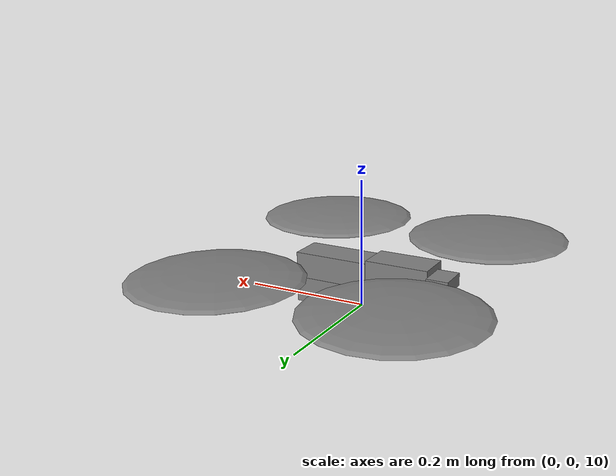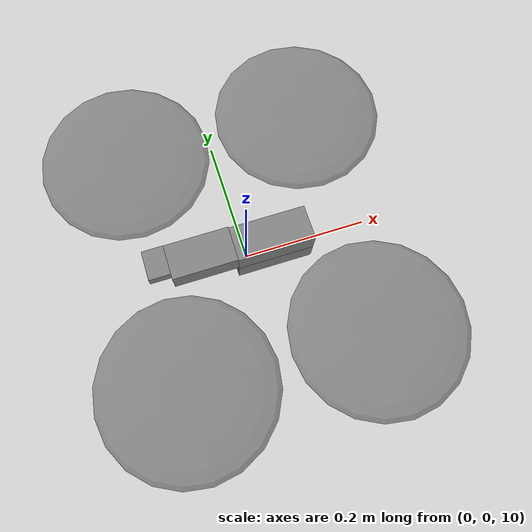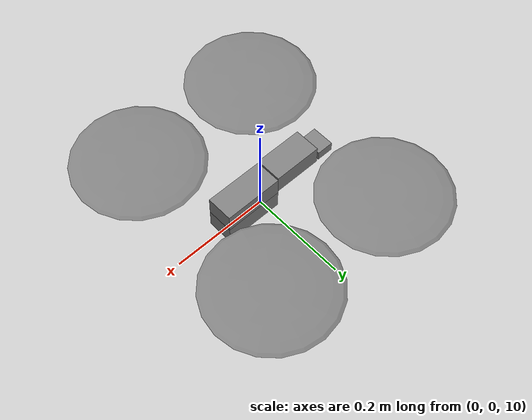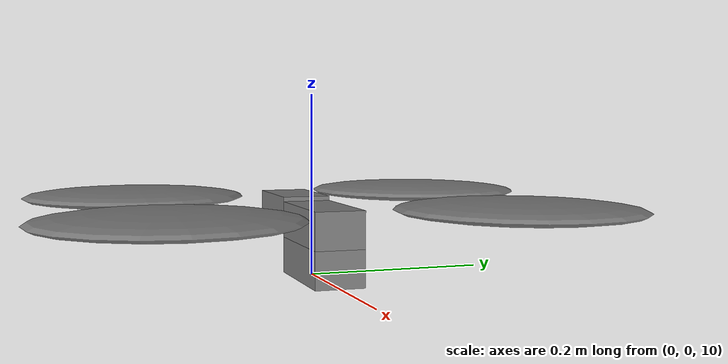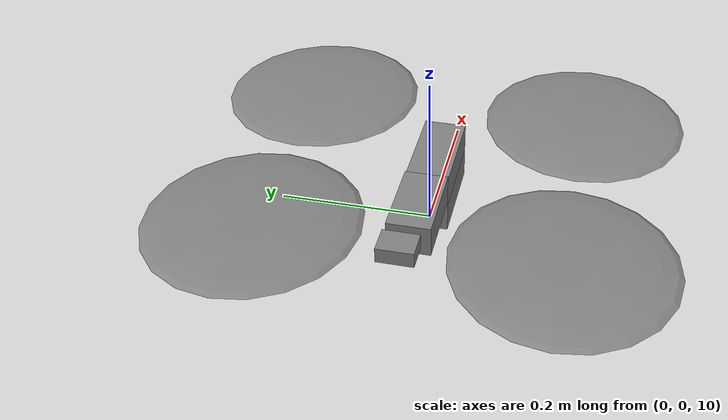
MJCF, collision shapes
<mujoco model="Skydio X2">
  <compiler autolimits="true" assetdir="assets"/>

  <option timestep="0.01"
          integrator="implicit"
          density="1.225"
          viscosity="1.8e-5"
          wind="0 0 0"/>   <!-- 3 m/s wind along +X -->

  <default>
    <default class="x2">
      <geom mass="0"/>
      <motor ctrlrange="0 13"/>
      <mesh scale="0.01 0.01 0.01"/>
      <default class="visual">
        <geom group="2" type="mesh" contype="0" conaffinity="0"/>
      </default>
      <default class="collision">
        <geom group="3" type="box"/>
        <default class="rotor">
          <geom type="ellipsoid" size=".13 .13 .01"/>
        </default>
      </default>
      <site group="5"/>
    </default>
  </default>

  <asset>
    <texture type="2d" file="X2_lowpoly_texture_SpinningProps_1024.png"/>
    <material name="phong3SG" texture="X2_lowpoly_texture_SpinningProps_1024"/>
    <material name="invisible" rgba="0 0 0 0"/>

    <mesh class="x2" file="X2_lowpoly.obj"/>
  </asset>

  <worldbody>
    <light name="spotlight" mode="targetbodycom" target="x2" pos="0 -1 2"/>
    <body name="x2" pos="0 0 10" childclass="x2">
      <freejoint/>
      <camera name="track" pos="0 0 5" mode="trackcom"/>
      <camera name="bottom_cam" pos="-0.0475 0 0.05" quat="0.707 0 0 0.707"/> <!-- a new camera for tracking the moving platform-->
      <site name="imu" pos="0 0 .02"/>
      <geom material="phong3SG" mesh="X2_lowpoly" class="visual" quat="0 0 1 1"/>
      <geom class="collision" size=".06 .027 .02" pos=".04 0 .02"/>
      <geom class="collision" size=".06 .027 .02" pos=".04 0 .06"/>
      <geom class="collision" size=".05 .027 .02" pos="-.07 0 .065"/>
      <geom class="collision" size=".023 .017 .01" pos="-.137 .008 .065" quat="1 0 0 1"/>
      <geom name="rotor1" class="rotor" pos="-.14 -.18 .08" mass=".25"/>
      <geom name="rotor2" class="rotor" pos="-.14 .18 .08" mass=".25"/>
      <geom name="rotor3" class="rotor" pos=".14 .18 .08" mass=".25"/>
      <geom name="rotor4" class="rotor" pos=".14 -.18 .08" mass=".25"/>
      <geom size=".16 .04 .02" pos="0 0 0.02" type="ellipsoid" mass=".325" class="visual" material="invisible"/>
      <site name="thrust1" pos="-.14 -.18 .08"/>
      <site name="thrust2" pos="-.14 .18 .08"/>
      <site name="thrust3" pos=".14 .18 .08"/>
      <site name="thrust4" pos=".14 -.18 .08"/>
    </body>
  </worldbody>

  <actuator>
    <motor name="thrust1" site="thrust1" gear="0 0 1  1  1  1"/>
    <motor name="thrust2" site="thrust2" gear="0 0 1 -1  1 -1"/>
    <motor name="thrust3" site="thrust3" gear="0 0 1 -1 -1  1"/>
    <motor name="thrust4" site="thrust4" gear="0 0 1  1 -1 -1"/>
  </actuator>

  <sensor>
    <gyro name="body_gyro" site="imu"/>
    <accelerometer name="body_linac" site="imu"/>
    <framequat name="body_quat" objtype="site" objname="imu"/>
  </sensor>

</mujoco>
